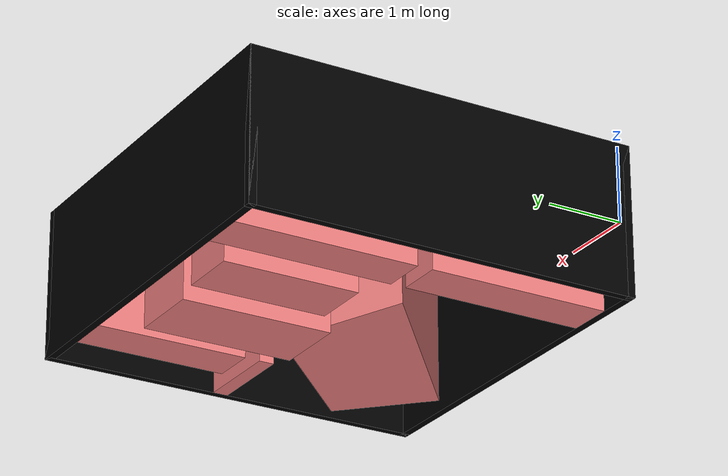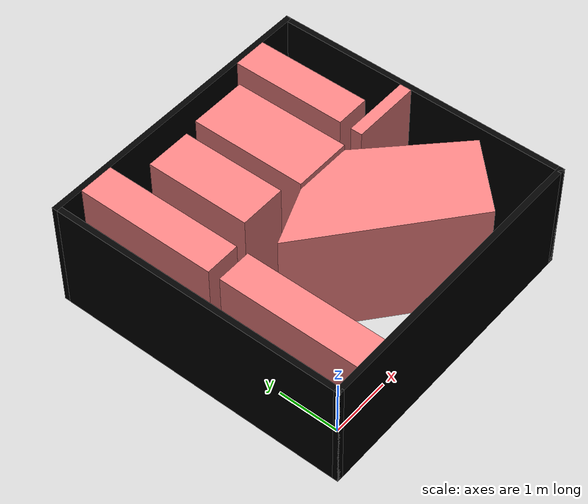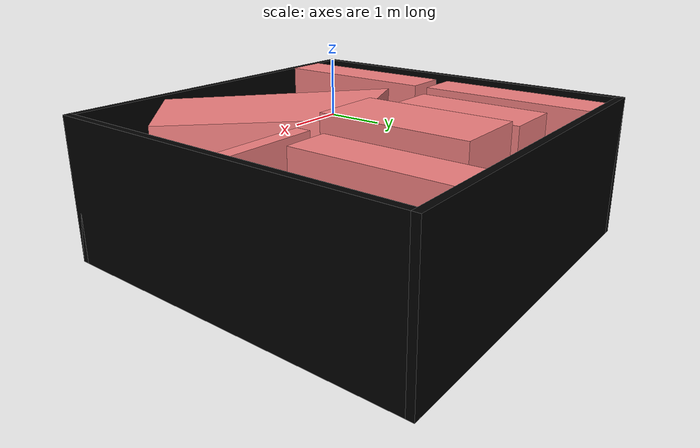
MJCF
<mujoco model="robot">
  <default class="default">
    <geom rgba="0.94 0.5 0.5 1" mass="1.0"/>
  </default>
  <asset>
    <mesh name="simple_2d_obstacle" file="simple_2d_obstacle.obj"/>
  </asset>
  <worldbody>
    <!-- border -->
    <geom type="box" pos="2.5 -0.05 0" size="2.6 0.05 1" rgba="0 0 0 1" />
    <geom type="box" pos="2.5 5.05 0" size="2.6 0.05 1" rgba="0 0 0 1" />
    <geom type="box" pos="-0.05 2.5 0" size="0.05 2.6 1" rgba="0 0 0 1" />
    <geom type="box" pos="5.05 2.5 0" size="0.05 2.6 1" rgba="0 0 0 1" />

    <!-- obstacles -->
    <geom type="mesh" pos="0 0 0" mesh="simple_2d_obstacle" class="default" />
    <geom type="box" pos=".7 1.2 0" size="0.3 1.2 1" class="default" />
    <geom type="box" pos=".7 3.8 0" size="0.3 1.2 1" class="default" />
    <geom type="box" pos="1.8 3.7 0" size="0.4 0.9 1" class="default" />
    <geom type="box" pos="2.9 3.6 0" size="0.5 1 1.1" class="default" />
    <geom type="box" pos="4.1 4 0" size="0.3 1 1" class="default" />
    <geom type="box" pos="4.4 2.7 0" size="0.6 0.1 1" class="default" />

    <!-- robot -->
    <body name="robot" pos="0 0 0">
      <geom type="sphere" pos="0 0 0" size="0.01" rgba="0 0 1 1" mass="1" />
      <joint type="slide" name="x" axis="1 0 0" range="0 5" limited="true"/>
      <joint type="slide" name="y" axis="0 1 0" range="0 5" limited="true"/>
    </body>
  </worldbody>
</mujoco>
